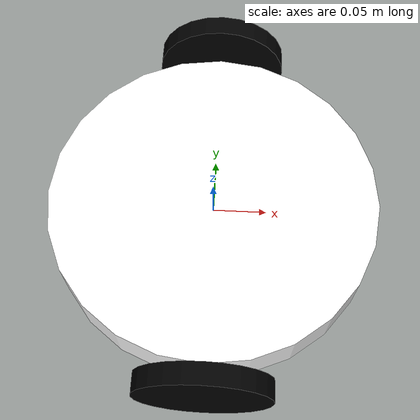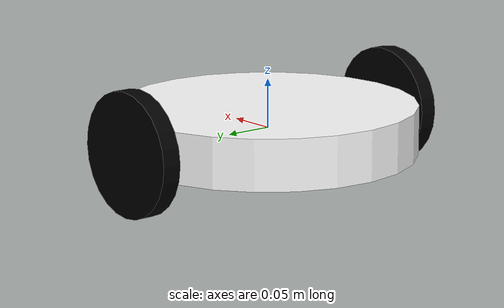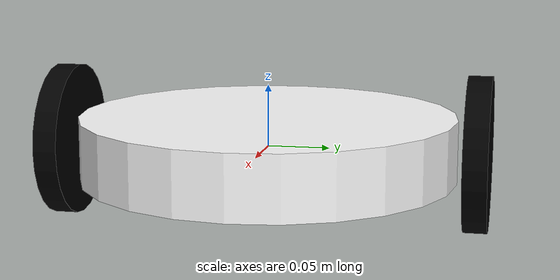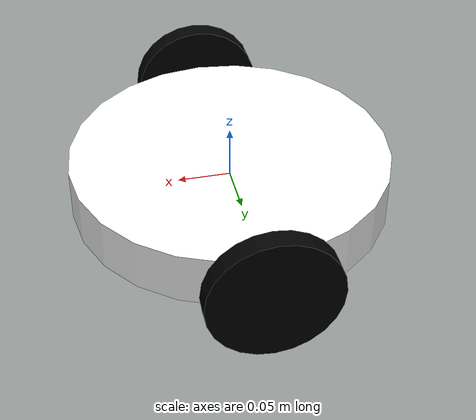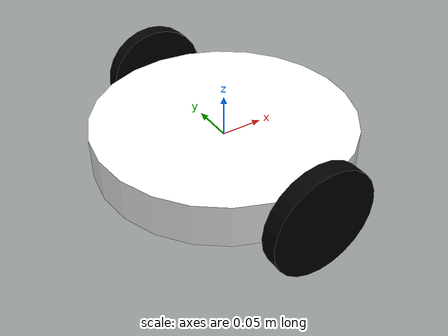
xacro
<?xml version="1.0"?>
<robot name="gypsy" xmlns:xacro="http://www.ros.org/wiki/xacro">
  <!--xacro:include filename="$(find mybot_description)/urdf/materials.xacro" /-->
  <!--xacro:include filename="$(find mybot_description)/urdf/macros.xacro" /-->

  <link name="base_link">
    <visual>
      <geometry>
        <cylinder length="0.0508" radius="0.1524" />
	<!--mesh filename="package://gypsy_description/meshes/gypsy_frame.dae"/-->
      </geometry>
      <material name="plastic">
        <color rgba="1 1 1 1" />
      </material>
    </visual>

    <collision>
      <geometry>
        <cylinder length="0.0508" radius="0.1524" />
      </geometry>
    </collision>

    <inertial>
      <mass value="10"/>
      <inertia
        ixx="1.0" ixy="0.0" ixz="0.0"
        iyy="1.0" iyz="0.0" izz="1.0"
      />
    </inertial>
  </link>

  <link name="right_wheel">
    <visual>
      <geometry>
        <cylinder length="0.01905" radius="0.061976" />
      </geometry>
      <material name="rubber">
        <color rgba="0 0 0 1" />
      </material>
    </visual>

    <collision>
      <geometry>
        <cylinder length="0.01905" radius="0.061976" />
      </geometry>
    </collision>

    <inertial>
      <mass value="1"/>
      <inertia
        ixx="1.0" ixy="0.0" ixz="0.0"
        iyy="1.0" iyz="0.0" izz="1.0"
      />
    </inertial>
  </link>

  <joint name="right_wheel_joint" type="continuous">
    <parent link="base_link" />
    <child link="right_wheel" />
    <origin xyz="0 -0.168402 0" rpy="-1.57075 0 0" />
    <axis xyz="0 0 1" />
    <limit effort="100" velocity="100"/>
    <dynamics damping="0.0" friction="0.0"/>
  </joint>

  <link name="left_wheel">
    <visual>
      <geometry>
        <cylinder length="0.01905" radius="0.061976" />
      </geometry>
      <material name="rubber" />
    </visual>

    <collision>
      <geometry>
        <cylinder length="0.01905" radius="0.061976" />
      </geometry>
    </collision>

    <inertial>
      <mass value="1"/>
      <inertia
        ixx="1.0" ixy="0.0" ixz="0.0"
        iyy="1.0" iyz="0.0" izz="1.0"
      />
    </inertial>
  </link>

  <joint name="left_wheel_joint" type="continuous">
    <parent link="base_link" />
    <child link="left_wheel" />
    <origin xyz="0 +0.168402 0" rpy="-1.57075 0 0" />
    <axis xyz="0 0 1" />
    <limit effort="100" velocity="100"/>
    <dynamics damping="0.0" friction="0.0"/>
  </joint>
</robot>
